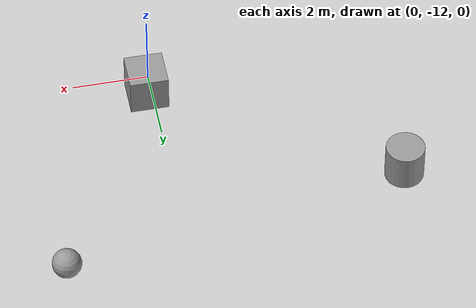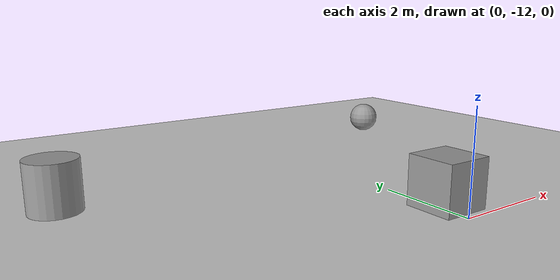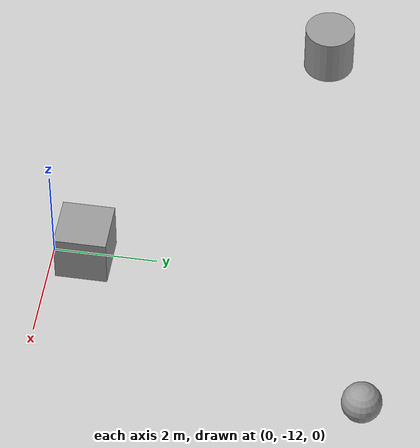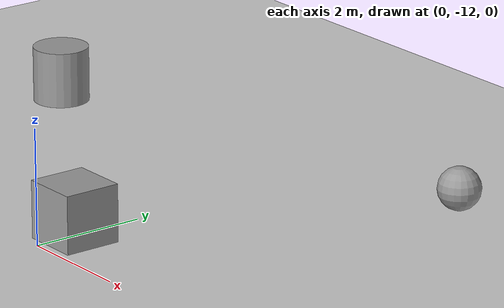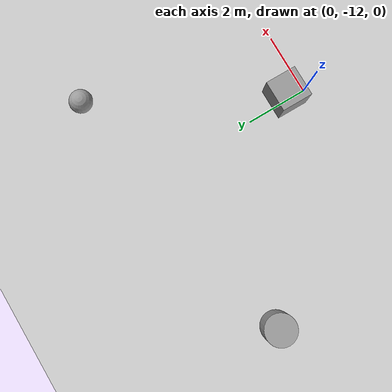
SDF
<sdf version="1.6">
 <world name="default">
  <model name="ground_plane">
   <static>1</static>
   <link name="link">
    <collision name="collision">
     <geometry><plane><normal>0 0 1</normal><size>100 100</size></plane></geometry>
     <surface>
      <contact><collide_bitmask>65535</collide_bitmask></contact>
      <friction><ode><mu>100</mu><mu2>50</mu2></ode></friction>
     </surface>
    </collision>
    <visual name="visual">
     <cast_shadows>0</cast_shadows>
     <geometry><plane><normal>0 0 1</normal><size>100 100</size></plane></geometry>
     <material>
      <script><uri>file://media/materials/scripts/gazebo.material</uri><name>Gazebo/Grey</name></script>
     </material>
    </visual>
   </link>
  </model>
  <model name="unit_sphere">
   <pose>3.1339 -5.73163 0.5 0 -0 0</pose>
   <link name="link">
    <inertial>
     <mass>1</mass>
     <inertia><ixx>0.1</ixx><ixy>0</ixy><ixz>0</ixz><iyy>0.1</iyy><iyz>0</iyz><izz>0.1</izz></inertia>
    </inertial>
    <collision name="collision"><geometry><sphere><radius>0.374077</radius></sphere></geometry></collision>
    <visual name="visual">
     <geometry><sphere><radius>0.374077</radius></sphere></geometry>
     <material>
      <script><name>Gazebo/Grey</name><uri>file://media/materials/scripts/gazebo.material</uri></script>
     </material>
    </visual>
   </link>
  </model>
  <model name="unit_box_4">
   <pose>0.147922 -11.3525 0.5 0 -0 0</pose>
   <link name="link">
    <inertial>
     <mass>1</mass>
     <inertia>
      <ixx>0.166667</ixx>
      <ixy>0</ixy>
      <ixz>0</ixz>
      <iyy>0.166667</iyy>
      <iyz>0</iyz>
      <izz>0.166667</izz>
     </inertia>
    </inertial>
    <collision name="collision"><geometry><box><size>1 1 1</size></box></geometry></collision>
    <visual name="visual">
     <geometry><box><size>1 1 1</size></box></geometry>
     <material>
      <script><name>Gazebo/Grey</name><uri>file://media/materials/scripts/gazebo.material</uri></script>
     </material>
    </visual>
   </link>
  </model>
  <model name="unit_cylinder_3">
   <pose>-5.81047 -7.41812 0.499991 -0 -0 -0</pose>
   <link name="link">
    <inertial>
     <mass>1</mass>
     <inertia><ixx>0.145833</ixx><ixy>0</ixy><ixz>0</ixz><iyy>0.145833</iyy><iyz>0</iyz><izz>0.125</izz></inertia>
    </inertial>
    <collision name="collision">
     <geometry><cylinder><radius>0.5</radius><length>1</length></cylinder></geometry>
    </collision>
    <visual name="visual">
     <geometry><cylinder><radius>0.5</radius><length>1</length></cylinder></geometry>
     <material>
      <script><name>Gazebo/Grey</name><uri>file://media/materials/scripts/gazebo.material</uri></script>
     </material>
    </visual>
   </link>
  </model>
 </world>
</sdf>
